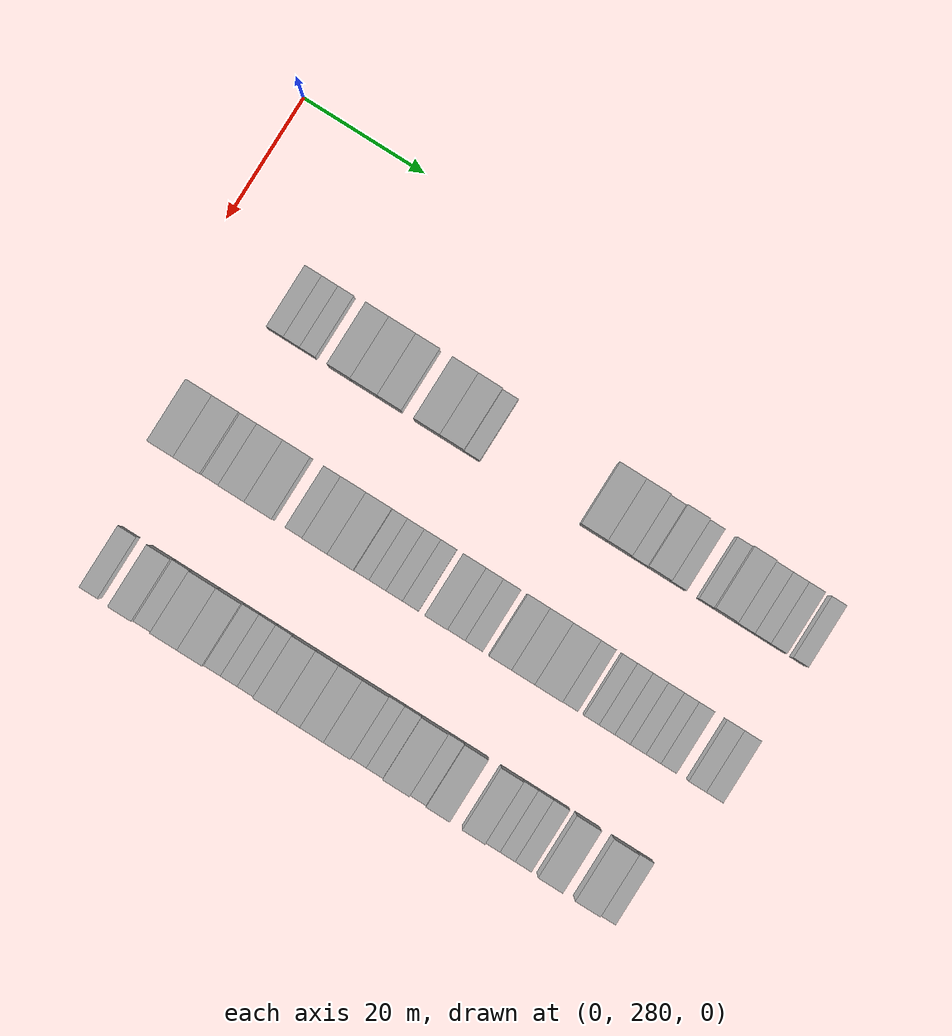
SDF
<sdf version="1.6">
 <world name="default">
  <model name="building_163">
   <static>1</static>
   <pose>25.0000 294.5246 0 0.000000 0.000000 0.000000</pose>
   <link name="link">
    <pose>0 0 3.00 0 0 0</pose>
    <collision name="collision"><geometry><box><size>10.0000 2.7366 6.0000</size></box></geometry></collision>
    <visual name="visual">
     <cast_shadows>0</cast_shadows>
     <geometry><box><size>10.0000 2.7366 6.0000</size></box></geometry>
     <material>
      <script>
       <uri>model://HANNAS_wall/materials/scripts</uri>
       <uri>model://HANNAS_wall/materials/textures</uri>
       <name>vrc/HANNAS_wall</name>
      </script>
     </material>
    </visual>
   </link>
  </model>
  <model name="building_164">
   <static>1</static>
   <pose>25.0000 297.2206 0 0.000000 0.000000 0.000000</pose>
   <link name="link">
    <pose>0 0 3.00 0 0 0</pose>
    <collision name="collision"><geometry><box><size>10.0000 2.6554 6.0000</size></box></geometry></collision>
    <visual name="visual">
     <cast_shadows>0</cast_shadows>
     <geometry><box><size>10.0000 2.6554 6.0000</size></box></geometry>
     <material>
      <script>
       <uri>model://HANNAS_wall/materials/scripts</uri>
       <uri>model://HANNAS_wall/materials/textures</uri>
       <name>vrc/HANNAS_wall</name>
      </script>
     </material>
    </visual>
   </link>
  </model>
  <model name="building_165">
   <static>1</static>
   <pose>25.0000 299.8441 0 0.000000 0.000000 0.000000</pose>
   <link name="link">
    <pose>0 0 3.00 0 0 0</pose>
    <collision name="collision"><geometry><box><size>10.0000 2.5915 6.0000</size></box></geometry></collision>
    <visual name="visual">
     <cast_shadows>0</cast_shadows>
     <geometry><box><size>10.0000 2.5915 6.0000</size></box></geometry>
     <material>
      <script>
       <uri>model://HANNAS_wall/materials/scripts</uri>
       <uri>model://HANNAS_wall/materials/textures</uri>
       <name>vrc/HANNAS_wall</name>
      </script>
     </material>
    </visual>
   </link>
  </model>
  <model name="building_166">
   <static>1</static>
   <pose>25.0000 305.0127 0 0.000000 0.000000 0.000000</pose>
   <link name="link">
    <pose>0 0 4.50 0 0 0</pose>
    <collision name="collision"><geometry><box><size>10.0000 3.7457 9.0000</size></box></geometry></collision>
    <visual name="visual">
     <cast_shadows>0</cast_shadows>
     <geometry><box><size>10.0000 3.7457 9.0000</size></box></geometry>
     <material>
      <script>
       <uri>model://HANNAS_wall/materials/scripts</uri>
       <uri>model://HANNAS_wall/materials/textures</uri>
       <name>vrc/HANNAS_wall</name>
      </script>
     </material>
    </visual>
   </link>
  </model>
  <model name="building_167">
   <static>1</static>
   <pose>25.0000 309.0588 0 0.000000 0.000000 0.000000</pose>
   <link name="link">
    <pose>0 0 4.50 0 0 0</pose>
    <collision name="collision"><geometry><box><size>10.0000 4.3464 9.0000</size></box></geometry></collision>
    <visual name="visual">
     <cast_shadows>0</cast_shadows>
     <geometry><box><size>10.0000 4.3464 9.0000</size></box></geometry>
     <material>
      <script>
       <uri>model://HANNAS_wall/materials/scripts</uri>
       <uri>model://HANNAS_wall/materials/textures</uri>
       <name>vrc/HANNAS_wall</name>
      </script>
     </material>
    </visual>
   </link>
  </model>
  <model name="building_168">
   <static>1</static>
   <pose>25.0000 313.1912 0 0.000000 0.000000 0.000000</pose>
   <link name="link">
    <pose>0 0 4.50 0 0 0</pose>
    <collision name="collision"><geometry><box><size>10.0000 3.9184 9.0000</size></box></geometry></collision>
    <visual name="visual">
     <cast_shadows>0</cast_shadows>
     <geometry><box><size>10.0000 3.9184 9.0000</size></box></geometry>
     <material>
      <script>
       <uri>model://HANNAS_wall/materials/scripts</uri>
       <uri>model://HANNAS_wall/materials/textures</uri>
       <name>vrc/HANNAS_wall</name>
      </script>
     </material>
    </visual>
   </link>
  </model>
  <model name="building_169">
   <static>1</static>
   <pose>25.0000 319.2604 0 0.000000 0.000000 0.000000</pose>
   <link name="link">
    <pose>0 0 4.50 0 0 0</pose>
    <collision name="collision"><geometry><box><size>10.0000 4.2201 9.0000</size></box></geometry></collision>
    <visual name="visual">
     <cast_shadows>0</cast_shadows>
     <geometry><box><size>10.0000 4.2201 9.0000</size></box></geometry>
     <material>
      <script>
       <uri>model://HANNAS_wall/materials/scripts</uri>
       <uri>model://HANNAS_wall/materials/textures</uri>
       <name>vrc/HANNAS_wall</name>
      </script>
     </material>
    </visual>
   </link>
  </model>
  <model name="building_170">
   <static>1</static>
   <pose>25.0000 323.3427 0 0.000000 0.000000 0.000000</pose>
   <link name="link">
    <pose>0 0 4.50 0 0 0</pose>
    <collision name="collision"><geometry><box><size>10.0000 3.9443 9.0000</size></box></geometry></collision>
    <visual name="visual">
     <cast_shadows>0</cast_shadows>
     <geometry><box><size>10.0000 3.9443 9.0000</size></box></geometry>
     <material>
      <script>
       <uri>model://HANNAS_wall/materials/scripts</uri>
       <uri>model://HANNAS_wall/materials/textures</uri>
       <name>vrc/HANNAS_wall</name>
      </script>
     </material>
    </visual>
   </link>
  </model>
  <model name="building_171">
   <static>1</static>
   <pose>25.0000 326.6043 0 0.000000 0.000000 0.000000</pose>
   <link name="link">
    <pose>0 0 3.00 0 0 0</pose>
    <collision name="collision"><geometry><box><size>10.0000 2.5790 6.0000</size></box></geometry></collision>
    <visual name="visual">
     <cast_shadows>0</cast_shadows>
     <geometry><box><size>10.0000 2.5790 6.0000</size></box></geometry>
     <material>
      <script>
       <uri>model://HANNAS_wall/materials/scripts</uri>
       <uri>model://HANNAS_wall/materials/textures</uri>
       <name>vrc/HANNAS_wall</name>
      </script>
     </material>
    </visual>
   </link>
  </model>
  <model name="building_172">
   <static>1</static>
   <pose>25.0000 346.3845 0 0.000000 0.000000 0.000000</pose>
   <link name="link">
    <pose>0 0 4.50 0 0 0</pose>
    <collision name="collision"><geometry><box><size>10.0000 4.3271 9.0000</size></box></geometry></collision>
    <visual name="visual">
     <cast_shadows>0</cast_shadows>
     <geometry><box><size>10.0000 4.3271 9.0000</size></box></geometry>
     <material>
      <script>
       <uri>model://HANNAS_wall/materials/scripts</uri>
       <uri>model://HANNAS_wall/materials/textures</uri>
       <name>vrc/HANNAS_wall</name>
      </script>
     </material>
    </visual>
   </link>
  </model>
  <model name="building_173">
   <static>1</static>
   <pose>25.0000 350.5135 0 0.000000 0.000000 0.000000</pose>
   <link name="link">
    <pose>0 0 4.50 0 0 0</pose>
    <collision name="collision"><geometry><box><size>10.0000 3.9310 9.0000</size></box></geometry></collision>
    <visual name="visual">
     <cast_shadows>0</cast_shadows>
     <geometry><box><size>10.0000 3.9310 9.0000</size></box></geometry>
     <material>
      <script>
       <uri>model://HANNAS_wall/materials/scripts</uri>
       <uri>model://HANNAS_wall/materials/textures</uri>
       <name>vrc/HANNAS_wall</name>
      </script>
     </material>
    </visual>
   </link>
  </model>
  <model name="building_174">
   <static>1</static>
   <pose>25.0000 353.8119 0 0.000000 0.000000 0.000000</pose>
   <link name="link">
    <pose>0 0 3.00 0 0 0</pose>
    <collision name="collision"><geometry><box><size>10.0000 2.6658 6.0000</size></box></geometry></collision>
    <visual name="visual">
     <cast_shadows>0</cast_shadows>
     <geometry><box><size>10.0000 2.6658 6.0000</size></box></geometry>
     <material>
      <script>
       <uri>model://HANNAS_wall/materials/scripts</uri>
       <uri>model://HANNAS_wall/materials/textures</uri>
       <name>vrc/HANNAS_wall</name>
      </script>
     </material>
    </visual>
   </link>
  </model>
  <model name="building_175">
   <static>1</static>
   <pose>25.0000 357.0023 0 0.000000 0.000000 0.000000</pose>
   <link name="link">
    <pose>0 0 4.50 0 0 0</pose>
    <collision name="collision"><geometry><box><size>10.0000 3.7150 9.0000</size></box></geometry></collision>
    <visual name="visual">
     <cast_shadows>0</cast_shadows>
     <geometry><box><size>10.0000 3.7150 9.0000</size></box></geometry>
     <material>
      <script>
       <uri>model://HANNAS_wall/materials/scripts</uri>
       <uri>model://HANNAS_wall/materials/textures</uri>
       <name>vrc/HANNAS_wall</name>
      </script>
     </material>
    </visual>
   </link>
  </model>
  <model name="building_176">
   <static>1</static>
   <pose>25.0000 360.1550 0 0.000000 0.000000 0.000000</pose>
   <link name="link">
    <pose>0 0 3.00 0 0 0</pose>
    <collision name="collision"><geometry><box><size>10.0000 2.5903 6.0000</size></box></geometry></collision>
    <visual name="visual">
     <cast_shadows>0</cast_shadows>
     <geometry><box><size>10.0000 2.5903 6.0000</size></box></geometry>
     <material>
      <script>
       <uri>model://HANNAS_wall/materials/scripts</uri>
       <uri>model://HANNAS_wall/materials/textures</uri>
       <name>vrc/HANNAS_wall</name>
      </script>
     </material>
    </visual>
   </link>
  </model>
  <model name="building_177">
   <static>1</static>
   <pose>25.0000 364.6773 0 0.000000 0.000000 0.000000</pose>
   <link name="link">
    <pose>0 0 3.00 0 0 0</pose>
    <collision name="collision"><geometry><box><size>10.0000 2.4544 6.0000</size></box></geometry></collision>
    <visual name="visual">
     <cast_shadows>0</cast_shadows>
     <geometry><box><size>10.0000 2.4544 6.0000</size></box></geometry>
     <material>
      <script>
       <uri>model://HANNAS_wall/materials/scripts</uri>
       <uri>model://HANNAS_wall/materials/textures</uri>
       <name>vrc/HANNAS_wall</name>
      </script>
     </material>
    </visual>
   </link>
  </model>
  <model name="building_178">
   <static>1</static>
   <pose>25.0000 367.7355 0 0.000000 0.000000 0.000000</pose>
   <link name="link">
    <pose>0 0 4.50 0 0 0</pose>
    <collision name="collision"><geometry><box><size>10.0000 3.6621 9.0000</size></box></geometry></collision>
    <visual name="visual">
     <cast_shadows>0</cast_shadows>
     <geometry><box><size>10.0000 3.6621 9.0000</size></box></geometry>
     <material>
      <script>
       <uri>model://HANNAS_wall/materials/scripts</uri>
       <uri>model://HANNAS_wall/materials/textures</uri>
       <name>vrc/HANNAS_wall</name>
      </script>
     </material>
    </visual>
   </link>
  </model>
  <model name="building_179">
   <static>1</static>
   <pose>25.0000 371.0319 0 0.000000 0.000000 0.000000</pose>
   <link name="link">
    <pose>0 0 3.00 0 0 0</pose>
    <collision name="collision"><geometry><box><size>10.0000 2.9308 6.0000</size></box></geometry></collision>
    <visual name="visual">
     <cast_shadows>0</cast_shadows>
     <geometry><box><size>10.0000 2.9308 6.0000</size></box></geometry>
     <material>
      <script>
       <uri>model://HANNAS_wall/materials/scripts</uri>
       <uri>model://HANNAS_wall/materials/textures</uri>
       <name>vrc/HANNAS_wall</name>
      </script>
     </material>
    </visual>
   </link>
  </model>
  <model name="building_180">
   <static>1</static>
   <pose>25.0000 373.7927 0 0.000000 0.000000 0.000000</pose>
   <link name="link">
    <pose>0 0 3.00 0 0 0</pose>
    <collision name="collision"><geometry><box><size>10.0000 2.5908 6.0000</size></box></geometry></collision>
    <visual name="visual">
     <cast_shadows>0</cast_shadows>
     <geometry><box><size>10.0000 2.5908 6.0000</size></box></geometry>
     <material>
      <script>
       <uri>model://HANNAS_wall/materials/scripts</uri>
       <uri>model://HANNAS_wall/materials/textures</uri>
       <name>vrc/HANNAS_wall</name>
      </script>
     </material>
    </visual>
   </link>
  </model>
  <model name="building_181">
   <static>1</static>
   <pose>25.0000 376.4055 0 0.000000 0.000000 0.000000</pose>
   <link name="link">
    <pose>0 0 3.00 0 0 0</pose>
    <collision name="collision"><geometry><box><size>10.0000 2.6347 6.0000</size></box></geometry></collision>
    <visual name="visual">
     <cast_shadows>0</cast_shadows>
     <geometry><box><size>10.0000 2.6347 6.0000</size></box></geometry>
     <material>
      <script>
       <uri>model://HANNAS_wall/materials/scripts</uri>
       <uri>model://HANNAS_wall/materials/textures</uri>
       <name>vrc/HANNAS_wall</name>
      </script>
     </material>
    </visual>
   </link>
  </model>
  <model name="building_182">
   <static>1</static>
   <pose>25.0000 379.9586 0 0.000000 0.000000 0.000000</pose>
   <link name="link">
    <pose>0 0 3.00 0 0 0</pose>
    <collision name="collision"><geometry><box><size>10.0000 2.4717 6.0000</size></box></geometry></collision>
    <visual name="visual">
     <cast_shadows>0</cast_shadows>
     <geometry><box><size>10.0000 2.4717 6.0000</size></box></geometry>
     <material>
      <script>
       <uri>model://HANNAS_wall/materials/scripts</uri>
       <uri>model://HANNAS_wall/materials/textures</uri>
       <name>vrc/HANNAS_wall</name>
      </script>
     </material>
    </visual>
   </link>
  </model>
  <model name="building_353">
   <static>1</static>
   <pose>47.0000 290.0331 0 0.000000 0.000000 0.000000</pose>
   <link name="link">
    <pose>0 0 4.50 0 0 0</pose>
    <collision name="collision"><geometry><box><size>10.0000 4.2275 9.0000</size></box></geometry></collision>
    <visual name="visual">
     <cast_shadows>0</cast_shadows>
     <geometry><box><size>10.0000 4.2275 9.0000</size></box></geometry>
     <material>
      <script>
       <uri>model://HANNAS_wall/materials/scripts</uri>
       <uri>model://HANNAS_wall/materials/textures</uri>
       <name>vrc/HANNAS_wall</name>
      </script>
     </material>
    </visual>
   </link>
  </model>
  <model name="building_354">
   <static>1</static>
   <pose>47.0000 294.3021 0 0.000000 0.000000 0.000000</pose>
   <link name="link">
    <pose>0 0 4.50 0 0 0</pose>
    <collision name="collision"><geometry><box><size>10.0000 4.3106 9.0000</size></box></geometry></collision>
    <visual name="visual">
     <cast_shadows>0</cast_shadows>
     <geometry><box><size>10.0000 4.3106 9.0000</size></box></geometry>
     <material>
      <script>
       <uri>model://HANNAS_wall/materials/scripts</uri>
       <uri>model://HANNAS_wall/materials/textures</uri>
       <name>vrc/HANNAS_wall</name>
      </script>
     </material>
    </visual>
   </link>
  </model>
  <model name="building_355">
   <static>1</static>
   <pose>47.0000 297.9314 0 0.000000 0.000000 0.000000</pose>
   <link name="link">
    <pose>0 0 3.00 0 0 0</pose>
    <collision name="collision"><geometry><box><size>10.0000 2.9480 6.0000</size></box></geometry></collision>
    <visual name="visual">
     <cast_shadows>0</cast_shadows>
     <geometry><box><size>10.0000 2.9480 6.0000</size></box></geometry>
     <material>
      <script>
       <uri>model://HANNAS_wall/materials/scripts</uri>
       <uri>model://HANNAS_wall/materials/textures</uri>
       <name>vrc/HANNAS_wall</name>
      </script>
     </material>
    </visual>
   </link>
  </model>
  <model name="building_356">
   <static>1</static>
   <pose>47.0000 301.5041 0 0.000000 0.000000 0.000000</pose>
   <link name="link">
    <pose>0 0 4.50 0 0 0</pose>
    <collision name="collision"><geometry><box><size>10.0000 4.1974 9.0000</size></box></geometry></collision>
    <visual name="visual">
     <cast_shadows>0</cast_shadows>
     <geometry><box><size>10.0000 4.1974 9.0000</size></box></geometry>
     <material>
      <script>
       <uri>model://HANNAS_wall/materials/scripts</uri>
       <uri>model://HANNAS_wall/materials/textures</uri>
       <name>vrc/HANNAS_wall</name>
      </script>
     </material>
    </visual>
   </link>
  </model>
  <model name="building_357">
   <static>1</static>
   <pose>47.0000 305.8285 0 0.000000 0.000000 0.000000</pose>
   <link name="link">
    <pose>0 0 4.50 0 0 0</pose>
    <collision name="collision"><geometry><box><size>10.0000 4.4513 9.0000</size></box></geometry></collision>
    <visual name="visual">
     <cast_shadows>0</cast_shadows>
     <geometry><box><size>10.0000 4.4513 9.0000</size></box></geometry>
     <material>
      <script>
       <uri>model://HANNAS_wall/materials/scripts</uri>
       <uri>model://HANNAS_wall/materials/textures</uri>
       <name>vrc/HANNAS_wall</name>
      </script>
     </material>
    </visual>
   </link>
  </model>
  <model name="building_358">
   <static>1</static>
   <pose>47.0000 311.5046 0 0.000000 0.000000 0.000000</pose>
   <link name="link">
    <pose>0 0 3.00 0 0 0</pose>
    <collision name="collision"><geometry><box><size>10.0000 2.9008 6.0000</size></box></geometry></collision>
    <visual name="visual">
     <cast_shadows>0</cast_shadows>
     <geometry><box><size>10.0000 2.9008 6.0000</size></box></geometry>
     <material>
      <script>
       <uri>model://HANNAS_wall/materials/scripts</uri>
       <uri>model://HANNAS_wall/materials/textures</uri>
       <name>vrc/HANNAS_wall</name>
      </script>
     </material>
    </visual>
   </link>
  </model>
  <model name="building_359">
   <static>1</static>
   <pose>47.0000 314.9943 0 0.000000 0.000000 0.000000</pose>
   <link name="link">
    <pose>0 0 4.50 0 0 0</pose>
    <collision name="collision"><geometry><box><size>10.0000 4.0788 9.0000</size></box></geometry></collision>
    <visual name="visual">
     <cast_shadows>0</cast_shadows>
     <geometry><box><size>10.0000 4.0788 9.0000</size></box></geometry>
     <material>
      <script>
       <uri>model://HANNAS_wall/materials/scripts</uri>
       <uri>model://HANNAS_wall/materials/textures</uri>
       <name>vrc/HANNAS_wall</name>
      </script>
     </material>
    </visual>
   </link>
  </model>
  <model name="building_360">
   <static>1</static>
   <pose>47.0000 319.1360 0 0.000000 0.000000 0.000000</pose>
   <link name="link">
    <pose>0 0 4.50 0 0 0</pose>
    <collision name="collision"><geometry><box><size>10.0000 4.2045 9.0000</size></box></geometry></collision>
    <visual name="visual">
     <cast_shadows>0</cast_shadows>
     <geometry><box><size>10.0000 4.2045 9.0000</size></box></geometry>
     <material>
      <script>
       <uri>model://HANNAS_wall/materials/scripts</uri>
       <uri>model://HANNAS_wall/materials/textures</uri>
       <name>vrc/HANNAS_wall</name>
      </script>
     </material>
    </visual>
   </link>
  </model>
  <model name="building_361">
   <static>1</static>
   <pose>47.0000 322.4687 0 0.000000 0.000000 0.000000</pose>
   <link name="link">
    <pose>0 0 3.00 0 0 0</pose>
    <collision name="collision"><geometry><box><size>10.0000 2.4609 6.0000</size></box></geometry></collision>
    <visual name="visual">
     <cast_shadows>0</cast_shadows>
     <geometry><box><size>10.0000 2.4609 6.0000</size></box></geometry>
     <material>
      <script>
       <uri>model://HANNAS_wall/materials/scripts</uri>
       <uri>model://HANNAS_wall/materials/textures</uri>
       <name>vrc/HANNAS_wall</name>
      </script>
     </material>
    </visual>
   </link>
  </model>
  <model name="building_362">
   <static>1</static>
   <pose>47.0000 325.0698 0 0.000000 0.000000 0.000000</pose>
   <link name="link">
    <pose>0 0 3.00 0 0 0</pose>
    <collision name="collision"><geometry><box><size>10.0000 2.7413 6.0000</size></box></geometry></collision>
    <visual name="visual">
     <cast_shadows>0</cast_shadows>
     <geometry><box><size>10.0000 2.7413 6.0000</size></box></geometry>
     <material>
      <script>
       <uri>model://HANNAS_wall/materials/scripts</uri>
       <uri>model://HANNAS_wall/materials/textures</uri>
       <name>vrc/HANNAS_wall</name>
      </script>
     </material>
    </visual>
   </link>
  </model>
  <model name="building_363">
   <static>1</static>
   <pose>47.0000 327.7784 0 0.000000 0.000000 0.000000</pose>
   <link name="link">
    <pose>0 0 3.00 0 0 0</pose>
    <collision name="collision"><geometry><box><size>10.0000 2.6760 6.0000</size></box></geometry></collision>
    <visual name="visual">
     <cast_shadows>0</cast_shadows>
     <geometry><box><size>10.0000 2.6760 6.0000</size></box></geometry>
     <material>
      <script>
       <uri>model://HANNAS_wall/materials/scripts</uri>
       <uri>model://HANNAS_wall/materials/textures</uri>
       <name>vrc/HANNAS_wall</name>
      </script>
     </material>
    </visual>
   </link>
  </model>
  <model name="building_364">
   <static>1</static>
   <pose>47.0000 330.4328 0 0.000000 0.000000 0.000000</pose>
   <link name="link">
    <pose>0 0 3.00 0 0 0</pose>
    <collision name="collision"><geometry><box><size>10.0000 2.6329 6.0000</size></box></geometry></collision>
    <visual name="visual">
     <cast_shadows>0</cast_shadows>
     <geometry><box><size>10.0000 2.6329 6.0000</size></box></geometry>
     <material>
      <script>
       <uri>model://HANNAS_wall/materials/scripts</uri>
       <uri>model://HANNAS_wall/materials/textures</uri>
       <name>vrc/HANNAS_wall</name>
      </script>
     </material>
    </visual>
   </link>
  </model>
  <model name="building_365">
   <static>1</static>
   <pose>47.0000 334.5962 0 0.000000 0.000000 0.000000</pose>
   <link name="link">
    <pose>0 0 4.50 0 0 0</pose>
    <collision name="collision"><geometry><box><size>10.0000 3.6938 9.0000</size></box></geometry></collision>
    <visual name="visual">
     <cast_shadows>0</cast_shadows>
     <geometry><box><size>10.0000 3.6938 9.0000</size></box></geometry>
     <material>
      <script>
       <uri>model://HANNAS_wall/materials/scripts</uri>
       <uri>model://HANNAS_wall/materials/textures</uri>
       <name>vrc/HANNAS_wall</name>
      </script>
     </material>
    </visual>
   </link>
  </model>
  <model name="building_366">
   <static>1</static>
   <pose>47.0000 337.8680 0 0.000000 0.000000 0.000000</pose>
   <link name="link">
    <pose>0 0 3.00 0 0 0</pose>
    <collision name="collision"><geometry><box><size>10.0000 2.8497 6.0000</size></box></geometry></collision>
    <visual name="visual">
     <cast_shadows>0</cast_shadows>
     <geometry><box><size>10.0000 2.8497 6.0000</size></box></geometry>
     <material>
      <script>
       <uri>model://HANNAS_wall/materials/scripts</uri>
       <uri>model://HANNAS_wall/materials/textures</uri>
       <name>vrc/HANNAS_wall</name>
      </script>
     </material>
    </visual>
   </link>
  </model>
  <model name="building_367">
   <static>1</static>
   <pose>47.0000 340.7197 0 0.000000 0.000000 0.000000</pose>
   <link name="link">
    <pose>0 0 3.00 0 0 0</pose>
    <collision name="collision"><geometry><box><size>10.0000 2.8536 6.0000</size></box></geometry></collision>
    <visual name="visual">
     <cast_shadows>0</cast_shadows>
     <geometry><box><size>10.0000 2.8536 6.0000</size></box></geometry>
     <material>
      <script>
       <uri>model://HANNAS_wall/materials/scripts</uri>
       <uri>model://HANNAS_wall/materials/textures</uri>
       <name>vrc/HANNAS_wall</name>
      </script>
     </material>
    </visual>
   </link>
  </model>
  <model name="building_368">
   <static>1</static>
   <pose>47.0000 344.9619 0 0.000000 0.000000 0.000000</pose>
   <link name="link">
    <pose>0 0 4.50 0 0 0</pose>
    <collision name="collision"><geometry><box><size>10.0000 3.6309 9.0000</size></box></geometry></collision>
    <visual name="visual">
     <cast_shadows>0</cast_shadows>
     <geometry><box><size>10.0000 3.6309 9.0000</size></box></geometry>
     <material>
      <script>
       <uri>model://HANNAS_wall/materials/scripts</uri>
       <uri>model://HANNAS_wall/materials/textures</uri>
       <name>vrc/HANNAS_wall</name>
      </script>
     </material>
    </visual>
   </link>
  </model>
  <model name="building_369">
   <static>1</static>
   <pose>47.0000 348.6462 0 0.000000 0.000000 0.000000</pose>
   <link name="link">
    <pose>0 0 4.50 0 0 0</pose>
    <collision name="collision"><geometry><box><size>10.0000 3.7378 9.0000</size></box></geometry></collision>
    <visual name="visual">
     <cast_shadows>0</cast_shadows>
     <geometry><box><size>10.0000 3.7378 9.0000</size></box></geometry>
     <material>
      <script>
       <uri>model://HANNAS_wall/materials/scripts</uri>
       <uri>model://HANNAS_wall/materials/textures</uri>
       <name>vrc/HANNAS_wall</name>
      </script>
     </material>
    </visual>
   </link>
  </model>
  <model name="building_370">
   <static>1</static>
   <pose>47.0000 352.7530 0 0.000000 0.000000 0.000000</pose>
   <link name="link">
    <pose>0 0 4.50 0 0 0</pose>
    <collision name="collision"><geometry><box><size>10.0000 4.4757 9.0000</size></box></geometry></collision>
    <visual name="visual">
     <cast_shadows>0</cast_shadows>
     <geometry><box><size>10.0000 4.4757 9.0000</size></box></geometry>
     <material>
      <script>
       <uri>model://HANNAS_wall/materials/scripts</uri>
       <uri>model://HANNAS_wall/materials/textures</uri>
       <name>vrc/HANNAS_wall</name>
      </script>
     </material>
    </visual>
   </link>
  </model>
  <model name="building_371">
   <static>1</static>
   <pose>47.0000 356.2957 0 0.000000 0.000000 0.000000</pose>
   <link name="link">
    <pose>0 0 3.00 0 0 0</pose>
    <collision name="collision"><geometry><box><size>10.0000 2.6097 6.0000</size></box></geometry></collision>
    <visual name="visual">
     <cast_shadows>0</cast_shadows>
     <geometry><box><size>10.0000 2.6097 6.0000</size></box></geometry>
     <material>
      <script>
       <uri>model://HANNAS_wall/materials/scripts</uri>
       <uri>model://HANNAS_wall/materials/textures</uri>
       <name>vrc/HANNAS_wall</name>
      </script>
     </material>
    </visual>
   </link>
  </model>
  <model name="building_372">
   <static>1</static>
   <pose>47.0000 359.8105 0 0.000000 0.000000 0.000000</pose>
   <link name="link">
    <pose>0 0 3.00 0 0 0</pose>
    <collision name="collision"><geometry><box><size>10.0000 2.4199 6.0000</size></box></geometry></collision>
    <visual name="visual">
     <cast_shadows>0</cast_shadows>
     <geometry><box><size>10.0000 2.4199 6.0000</size></box></geometry>
     <material>
      <script>
       <uri>model://HANNAS_wall/materials/scripts</uri>
       <uri>model://HANNAS_wall/materials/textures</uri>
       <name>vrc/HANNAS_wall</name>
      </script>
     </material>
    </visual>
   </link>
  </model>
  <model name="building_373">
   <static>1</static>
   <pose>47.0000 362.2854 0 0.000000 0.000000 0.000000</pose>
   <link name="link">
    <pose>0 0 3.00 0 0 0</pose>
    <collision name="collision"><geometry><box><size>10.0000 2.5298 6.0000</size></box></geometry></collision>
    <visual name="visual">
     <cast_shadows>0</cast_shadows>
     <geometry><box><size>10.0000 2.5298 6.0000</size></box></geometry>
     <material>
      <script>
       <uri>model://HANNAS_wall/materials/scripts</uri>
       <uri>model://HANNAS_wall/materials/textures</uri>
       <name>vrc/HANNAS_wall</name>
      </script>
     </material>
    </visual>
   </link>
  </model>
  <model name="building_374">
   <static>1</static>
   <pose>47.0000 364.7953 0 0.000000 0.000000 0.000000</pose>
   <link name="link">
    <pose>0 0 3.00 0 0 0</pose>
    <collision name="collision"><geometry><box><size>10.0000 2.4902 6.0000</size></box></geometry></collision>
    <visual name="visual">
     <cast_shadows>0</cast_shadows>
     <geometry><box><size>10.0000 2.4902 6.0000</size></box></geometry>
     <material>
      <script>
       <uri>model://HANNAS_wall/materials/scripts</uri>
       <uri>model://HANNAS_wall/materials/textures</uri>
       <name>vrc/HANNAS_wall</name>
      </script>
     </material>
    </visual>
   </link>
  </model>
  <model name="building_375">
   <static>1</static>
   <pose>47.0000 367.3271 0 0.000000 0.000000 0.000000</pose>
   <link name="link">
    <pose>0 0 3.00 0 0 0</pose>
    <collision name="collision"><geometry><box><size>10.0000 2.5733 6.0000</size></box></geometry></collision>
    <visual name="visual">
     <cast_shadows>0</cast_shadows>
     <geometry><box><size>10.0000 2.5733 6.0000</size></box></geometry>
     <material>
      <script>
       <uri>model://HANNAS_wall/materials/scripts</uri>
       <uri>model://HANNAS_wall/materials/textures</uri>
       <name>vrc/HANNAS_wall</name>
      </script>
     </material>
    </visual>
   </link>
  </model>
  <model name="building_376">
   <static>1</static>
   <pose>47.0000 369.8233 0 0.000000 0.000000 0.000000</pose>
   <link name="link">
    <pose>0 0 3.00 0 0 0</pose>
    <collision name="collision"><geometry><box><size>10.0000 2.4193 6.0000</size></box></geometry></collision>
    <visual name="visual">
     <cast_shadows>0</cast_shadows>
     <geometry><box><size>10.0000 2.4193 6.0000</size></box></geometry>
     <material>
      <script>
       <uri>model://HANNAS_wall/materials/scripts</uri>
       <uri>model://HANNAS_wall/materials/textures</uri>
       <name>vrc/HANNAS_wall</name>
      </script>
     </material>
    </visual>
   </link>
  </model>
  <model name="building_377">
   <static>1</static>
   <pose>47.0000 372.2966 0 0.000000 0.000000 0.000000</pose>
   <link name="link">
    <pose>0 0 3.00 0 0 0</pose>
    <collision name="collision"><geometry><box><size>10.0000 2.5273 6.0000</size></box></geometry></collision>
    <visual name="visual">
     <cast_shadows>0</cast_shadows>
     <geometry><box><size>10.0000 2.5273 6.0000</size></box></geometry>
     <material>
      <script>
       <uri>model://HANNAS_wall/materials/scripts</uri>
       <uri>model://HANNAS_wall/materials/textures</uri>
       <name>vrc/HANNAS_wall</name>
      </script>
     </material>
    </visual>
   </link>
  </model>
  <model name="building_378">
   <static>1</static>
   <pose>47.0000 376.9718 0 0.000000 0.000000 0.000000</pose>
   <link name="link">
    <pose>0 0 3.00 0 0 0</pose>
    <collision name="collision"><geometry><box><size>10.0000 2.8231 6.0000</size></box></geometry></collision>
    <visual name="visual">
     <cast_shadows>0</cast_shadows>
     <geometry><box><size>10.0000 2.8231 6.0000</size></box></geometry>
     <material>
      <script>
       <uri>model://HANNAS_wall/materials/scripts</uri>
       <uri>model://HANNAS_wall/materials/textures</uri>
       <name>vrc/HANNAS_wall</name>
      </script>
     </material>
    </visual>
   </link>
  </model>
  <model name="building_379">
   <static>1</static>
   <pose>47.0000 379.7643 0 0.000000 0.000000 0.000000</pose>
   <link name="link">
    <pose>0 0 3.00 0 0 0</pose>
    <collision name="collision"><geometry><box><size>10.0000 2.7619 6.0000</size></box></geometry></collision>
    <visual name="visual">
     <cast_shadows>0</cast_shadows>
     <geometry><box><size>10.0000 2.7619 6.0000</size></box></geometry>
     <material>
      <script>
       <uri>model://HANNAS_wall/materials/scripts</uri>
       <uri>model://HANNAS_wall/materials/textures</uri>
       <name>vrc/HANNAS_wall</name>
      </script>
     </material>
    </visual>
   </link>
  </model>
  <model name="building_552">
   <static>1</static>
   <pose>69.0000 291.9766 0 0.000000 0.000000 0.000000</pose>
   <link name="link">
    <pose>0 0 3.00 0 0 0</pose>
    <collision name="collision"><geometry><box><size>10.0000 2.9882 6.0000</size></box></geometry></collision>
    <visual name="visual">
     <cast_shadows>0</cast_shadows>
     <geometry><box><size>10.0000 2.9882 6.0000</size></box></geometry>
     <material>
      <script>
       <uri>model://HANNAS_wall/materials/scripts</uri>
       <uri>model://HANNAS_wall/materials/textures</uri>
       <name>vrc/HANNAS_wall</name>
      </script>
     </material>
    </visual>
   </link>
  </model>
  <model name="building_553">
   <static>1</static>
   <pose>69.0000 297.3817 0 0.000000 0.000000 0.000000</pose>
   <link name="link">
    <pose>0 0 4.50 0 0 0</pose>
    <collision name="collision"><geometry><box><size>10.0000 3.8218 9.0000</size></box></geometry></collision>
    <visual name="visual">
     <cast_shadows>0</cast_shadows>
     <geometry><box><size>10.0000 3.8218 9.0000</size></box></geometry>
     <material>
      <script>
       <uri>model://HANNAS_wall/materials/scripts</uri>
       <uri>model://HANNAS_wall/materials/textures</uri>
       <name>vrc/HANNAS_wall</name>
      </script>
     </material>
    </visual>
   </link>
  </model>
  <model name="building_554">
   <static>1</static>
   <pose>69.0000 300.7805 0 0.000000 0.000000 0.000000</pose>
   <link name="link">
    <pose>0 0 3.00 0 0 0</pose>
    <collision name="collision"><geometry><box><size>10.0000 2.9759 6.0000</size></box></geometry></collision>
    <visual name="visual">
     <cast_shadows>0</cast_shadows>
     <geometry><box><size>10.0000 2.9759 6.0000</size></box></geometry>
     <material>
      <script>
       <uri>model://HANNAS_wall/materials/scripts</uri>
       <uri>model://HANNAS_wall/materials/textures</uri>
       <name>vrc/HANNAS_wall</name>
      </script>
     </material>
    </visual>
   </link>
  </model>
  <model name="building_555">
   <static>1</static>
   <pose>69.0000 304.4614 0 0.000000 0.000000 0.000000</pose>
   <link name="link">
    <pose>0 0 4.50 0 0 0</pose>
    <collision name="collision"><geometry><box><size>10.0000 4.3859 9.0000</size></box></geometry></collision>
    <visual name="visual">
     <cast_shadows>0</cast_shadows>
     <geometry><box><size>10.0000 4.3859 9.0000</size></box></geometry>
     <material>
      <script>
       <uri>model://HANNAS_wall/materials/scripts</uri>
       <uri>model://HANNAS_wall/materials/textures</uri>
       <name>vrc/HANNAS_wall</name>
      </script>
     </material>
    </visual>
   </link>
  </model>
  <model name="building_556">
   <static>1</static>
   <pose>69.0000 308.6796 0 0.000000 0.000000 0.000000</pose>
   <link name="link">
    <pose>0 0 4.50 0 0 0</pose>
    <collision name="collision"><geometry><box><size>10.0000 4.0504 9.0000</size></box></geometry></collision>
    <visual name="visual">
     <cast_shadows>0</cast_shadows>
     <geometry><box><size>10.0000 4.0504 9.0000</size></box></geometry>
     <material>
      <script>
       <uri>model://HANNAS_wall/materials/scripts</uri>
       <uri>model://HANNAS_wall/materials/textures</uri>
       <name>vrc/HANNAS_wall</name>
      </script>
     </material>
    </visual>
   </link>
  </model>
  <model name="building_557">
   <static>1</static>
   <pose>69.0000 312.0686 0 0.000000 0.000000 0.000000</pose>
   <link name="link">
    <pose>0 0 3.00 0 0 0</pose>
    <collision name="collision"><geometry><box><size>10.0000 2.7276 6.0000</size></box></geometry></collision>
    <visual name="visual">
     <cast_shadows>0</cast_shadows>
     <geometry><box><size>10.0000 2.7276 6.0000</size></box></geometry>
     <material>
      <script>
       <uri>model://HANNAS_wall/materials/scripts</uri>
       <uri>model://HANNAS_wall/materials/textures</uri>
       <name>vrc/HANNAS_wall</name>
      </script>
     </material>
    </visual>
   </link>
  </model>
  <model name="building_558">
   <static>1</static>
   <pose>69.0000 314.7876 0 0.000000 0.000000 0.000000</pose>
   <link name="link">
    <pose>0 0 3.00 0 0 0</pose>
    <collision name="collision"><geometry><box><size>10.0000 2.7105 6.0000</size></box></geometry></collision>
    <visual name="visual">
     <cast_shadows>0</cast_shadows>
     <geometry><box><size>10.0000 2.7105 6.0000</size></box></geometry>
     <material>
      <script>
       <uri>model://HANNAS_wall/materials/scripts</uri>
       <uri>model://HANNAS_wall/materials/textures</uri>
       <name>vrc/HANNAS_wall</name>
      </script>
     </material>
    </visual>
   </link>
  </model>
  <model name="building_559">
   <static>1</static>
   <pose>69.0000 317.5079 0 0.000000 0.000000 0.000000</pose>
   <link name="link">
    <pose>0 0 3.00 0 0 0</pose>
    <collision name="collision"><geometry><box><size>10.0000 2.7302 6.0000</size></box></geometry></collision>
    <visual name="visual">
     <cast_shadows>0</cast_shadows>
     <geometry><box><size>10.0000 2.7302 6.0000</size></box></geometry>
     <material>
      <script>
       <uri>model://HANNAS_wall/materials/scripts</uri>
       <uri>model://HANNAS_wall/materials/textures</uri>
       <name>vrc/HANNAS_wall</name>
      </script>
     </material>
    </visual>
   </link>
  </model>
  <model name="building_560">
   <static>1</static>
   <pose>69.0000 320.8101 0 0.000000 0.000000 0.000000</pose>
   <link name="link">
    <pose>0 0 4.50 0 0 0</pose>
    <collision name="collision"><geometry><box><size>10.0000 3.8742 9.0000</size></box></geometry></collision>
    <visual name="visual">
     <cast_shadows>0</cast_shadows>
     <geometry><box><size>10.0000 3.8742 9.0000</size></box></geometry>
     <material>
      <script>
       <uri>model://HANNAS_wall/materials/scripts</uri>
       <uri>model://HANNAS_wall/materials/textures</uri>
       <name>vrc/HANNAS_wall</name>
      </script>
     </material>
    </visual>
   </link>
  </model>
  <model name="building_561">
   <static>1</static>
   <pose>69.0000 324.6138 0 0.000000 0.000000 0.000000</pose>
   <link name="link">
    <pose>0 0 4.50 0 0 0</pose>
    <collision name="collision"><geometry><box><size>10.0000 3.7332 9.0000</size></box></geometry></collision>
    <visual name="visual">
     <cast_shadows>0</cast_shadows>
     <geometry><box><size>10.0000 3.7332 9.0000</size></box></geometry>
     <material>
      <script>
       <uri>model://HANNAS_wall/materials/scripts</uri>
       <uri>model://HANNAS_wall/materials/textures</uri>
       <name>vrc/HANNAS_wall</name>
      </script>
     </material>
    </visual>
   </link>
  </model>
  <model name="building_562">
   <static>1</static>
   <pose>69.0000 328.3791 0 0.000000 0.000000 0.000000</pose>
   <link name="link">
    <pose>0 0 4.50 0 0 0</pose>
    <collision name="collision"><geometry><box><size>10.0000 3.7975 9.0000</size></box></geometry></collision>
    <visual name="visual">
     <cast_shadows>0</cast_shadows>
     <geometry><box><size>10.0000 3.7975 9.0000</size></box></geometry>
     <material>
      <script>
       <uri>model://HANNAS_wall/materials/scripts</uri>
       <uri>model://HANNAS_wall/materials/textures</uri>
       <name>vrc/HANNAS_wall</name>
      </script>
     </material>
    </visual>
   </link>
  </model>
  <model name="building_563">
   <static>1</static>
   <pose>69.0000 332.4353 0 0.000000 0.000000 0.000000</pose>
   <link name="link">
    <pose>0 0 4.50 0 0 0</pose>
    <collision name="collision"><geometry><box><size>10.0000 4.3149 9.0000</size></box></geometry></collision>
    <visual name="visual">
     <cast_shadows>0</cast_shadows>
     <geometry><box><size>10.0000 4.3149 9.0000</size></box></geometry>
     <material>
      <script>
       <uri>model://HANNAS_wall/materials/scripts</uri>
       <uri>model://HANNAS_wall/materials/textures</uri>
       <name>vrc/HANNAS_wall</name>
      </script>
     </material>
    </visual>
   </link>
  </model>
  <model name="building_564">
   <static>1</static>
   <pose>69.0000 335.8473 0 0.000000 0.000000 0.000000</pose>
   <link name="link">
    <pose>0 0 3.00 0 0 0</pose>
    <collision name="collision"><geometry><box><size>10.0000 2.5091 6.0000</size></box></geometry></collision>
    <visual name="visual">
     <cast_shadows>0</cast_shadows>
     <geometry><box><size>10.0000 2.5091 6.0000</size></box></geometry>
     <material>
      <script>
       <uri>model://HANNAS_wall/materials/scripts</uri>
       <uri>model://HANNAS_wall/materials/textures</uri>
       <name>vrc/HANNAS_wall</name>
      </script>
     </material>
    </visual>
   </link>
  </model>
  <model name="building_565">
   <static>1</static>
   <pose>69.0000 338.4538 0 0.000000 0.000000 0.000000</pose>
   <link name="link">
    <pose>0 0 3.00 0 0 0</pose>
    <collision name="collision"><geometry><box><size>10.0000 2.7039 6.0000</size></box></geometry></collision>
    <visual name="visual">
     <cast_shadows>0</cast_shadows>
     <geometry><box><size>10.0000 2.7039 6.0000</size></box></geometry>
     <material>
      <script>
       <uri>model://HANNAS_wall/materials/scripts</uri>
       <uri>model://HANNAS_wall/materials/textures</uri>
       <name>vrc/HANNAS_wall</name>
      </script>
     </material>
    </visual>
   </link>
  </model>
  <model name="building_566">
   <static>1</static>
   <pose>69.0000 341.9878 0 0.000000 0.000000 0.000000</pose>
   <link name="link">
    <pose>0 0 4.50 0 0 0</pose>
    <collision name="collision"><geometry><box><size>10.0000 4.3642 9.0000</size></box></geometry></collision>
    <visual name="visual">
     <cast_shadows>0</cast_shadows>
     <geometry><box><size>10.0000 4.3642 9.0000</size></box></geometry>
     <material>
      <script>
       <uri>model://HANNAS_wall/materials/scripts</uri>
       <uri>model://HANNAS_wall/materials/textures</uri>
       <name>vrc/HANNAS_wall</name>
      </script>
     </material>
    </visual>
   </link>
  </model>
  <model name="building_567">
   <static>1</static>
   <pose>69.0000 345.4879 0 0.000000 0.000000 0.000000</pose>
   <link name="link">
    <pose>0 0 3.00 0 0 0</pose>
    <collision name="collision"><geometry><box><size>10.0000 2.6359 6.0000</size></box></geometry></collision>
    <visual name="visual">
     <cast_shadows>0</cast_shadows>
     <geometry><box><size>10.0000 2.6359 6.0000</size></box></geometry>
     <material>
      <script>
       <uri>model://HANNAS_wall/materials/scripts</uri>
       <uri>model://HANNAS_wall/materials/textures</uri>
       <name>vrc/HANNAS_wall</name>
      </script>
     </material>
    </visual>
   </link>
  </model>
  <model name="building_568">
   <static>1</static>
   <pose>69.0000 348.7294 0 0.000000 0.000000 0.000000</pose>
   <link name="link">
    <pose>0 0 4.50 0 0 0</pose>
    <collision name="collision"><geometry><box><size>10.0000 3.8472 9.0000</size></box></geometry></collision>
    <visual name="visual">
     <cast_shadows>0</cast_shadows>
     <geometry><box><size>10.0000 3.8472 9.0000</size></box></geometry>
     <material>
      <script>
       <uri>model://HANNAS_wall/materials/scripts</uri>
       <uri>model://HANNAS_wall/materials/textures</uri>
       <name>vrc/HANNAS_wall</name>
      </script>
     </material>
    </visual>
   </link>
  </model>
  <model name="building_569">
   <static>1</static>
   <pose>69.0000 354.4915 0 0.000000 0.000000 0.000000</pose>
   <link name="link">
    <pose>0 0 4.50 0 0 0</pose>
    <collision name="collision"><geometry><box><size>10.0000 3.6770 9.0000</size></box></geometry></collision>
    <visual name="visual">
     <cast_shadows>0</cast_shadows>
     <geometry><box><size>10.0000 3.6770 9.0000</size></box></geometry>
     <material>
      <script>
       <uri>model://HANNAS_wall/materials/scripts</uri>
       <uri>model://HANNAS_wall/materials/textures</uri>
       <name>vrc/HANNAS_wall</name>
      </script>
     </material>
    </visual>
   </link>
  </model>
  <model name="building_570">
   <static>1</static>
   <pose>69.0000 357.5581 0 0.000000 0.000000 0.000000</pose>
   <link name="link">
    <pose>0 0 3.00 0 0 0</pose>
    <collision name="collision"><geometry><box><size>10.0000 2.4563 6.0000</size></box></geometry></collision>
    <visual name="visual">
     <cast_shadows>0</cast_shadows>
     <geometry><box><size>10.0000 2.4563 6.0000</size></box></geometry>
     <material>
      <script>
       <uri>model://HANNAS_wall/materials/scripts</uri>
       <uri>model://HANNAS_wall/materials/textures</uri>
       <name>vrc/HANNAS_wall</name>
      </script>
     </material>
    </visual>
   </link>
  </model>
  <model name="building_571">
   <static>1</static>
   <pose>69.0000 360.0138 0 0.000000 0.000000 0.000000</pose>
   <link name="link">
    <pose>0 0 3.00 0 0 0</pose>
    <collision name="collision"><geometry><box><size>10.0000 2.4550 6.0000</size></box></geometry></collision>
    <visual name="visual">
     <cast_shadows>0</cast_shadows>
     <geometry><box><size>10.0000 2.4550 6.0000</size></box></geometry>
     <material>
      <script>
       <uri>model://HANNAS_wall/materials/scripts</uri>
       <uri>model://HANNAS_wall/materials/textures</uri>
       <name>vrc/HANNAS_wall</name>
      </script>
     </material>
    </visual>
   </link>
  </model>
  <model name="building_572">
   <static>1</static>
   <pose>69.0000 362.5620 0 0.000000 0.000000 0.000000</pose>
   <link name="link">
    <pose>0 0 3.00 0 0 0</pose>
    <collision name="collision"><geometry><box><size>10.0000 2.6414 6.0000</size></box></geometry></collision>
    <visual name="visual">
     <cast_shadows>0</cast_shadows>
     <geometry><box><size>10.0000 2.6414 6.0000</size></box></geometry>
     <material>
      <script>
       <uri>model://HANNAS_wall/materials/scripts</uri>
       <uri>model://HANNAS_wall/materials/textures</uri>
       <name>vrc/HANNAS_wall</name>
      </script>
     </material>
    </visual>
   </link>
  </model>
  <model name="building_573">
   <static>1</static>
   <pose>69.0000 366.8743 0 0.000000 0.000000 0.000000</pose>
   <link name="link">
    <pose>0 0 4.50 0 0 0</pose>
    <collision name="collision"><geometry><box><size>10.0000 3.9832 9.0000</size></box></geometry></collision>
    <visual name="visual">
     <cast_shadows>0</cast_shadows>
     <geometry><box><size>10.0000 3.9832 9.0000</size></box></geometry>
     <material>
      <script>
       <uri>model://HANNAS_wall/materials/scripts</uri>
       <uri>model://HANNAS_wall/materials/textures</uri>
       <name>vrc/HANNAS_wall</name>
      </script>
     </material>
    </visual>
   </link>
  </model>
  <model name="building_574">
   <static>1</static>
   <pose>69.0000 372.8976 0 0.000000 0.000000 0.000000</pose>
   <link name="link">
    <pose>0 0 4.50 0 0 0</pose>
    <collision name="collision"><geometry><box><size>10.0000 4.0634 9.0000</size></box></geometry></collision>
    <visual name="visual">
     <cast_shadows>0</cast_shadows>
     <geometry><box><size>10.0000 4.0634 9.0000</size></box></geometry>
     <material>
      <script>
       <uri>model://HANNAS_wall/materials/scripts</uri>
       <uri>model://HANNAS_wall/materials/textures</uri>
       <name>vrc/HANNAS_wall</name>
      </script>
     </material>
    </visual>
   </link>
  </model>
  <model name="building_575">
   <static>1</static>
   <pose>69.0000 376.2203 0 0.000000 0.000000 0.000000</pose>
   <link name="link">
    <pose>0 0 3.00 0 0 0</pose>
    <collision name="collision"><geometry><box><size>10.0000 2.5820 6.0000</size></box></geometry></collision>
    <visual name="visual">
     <cast_shadows>0</cast_shadows>
     <geometry><box><size>10.0000 2.5820 6.0000</size></box></geometry>
     <material>
      <script>
       <uri>model://HANNAS_wall/materials/scripts</uri>
       <uri>model://HANNAS_wall/materials/textures</uri>
       <name>vrc/HANNAS_wall</name>
      </script>
     </material>
    </visual>
   </link>
  </model>
 </world>
</sdf>
